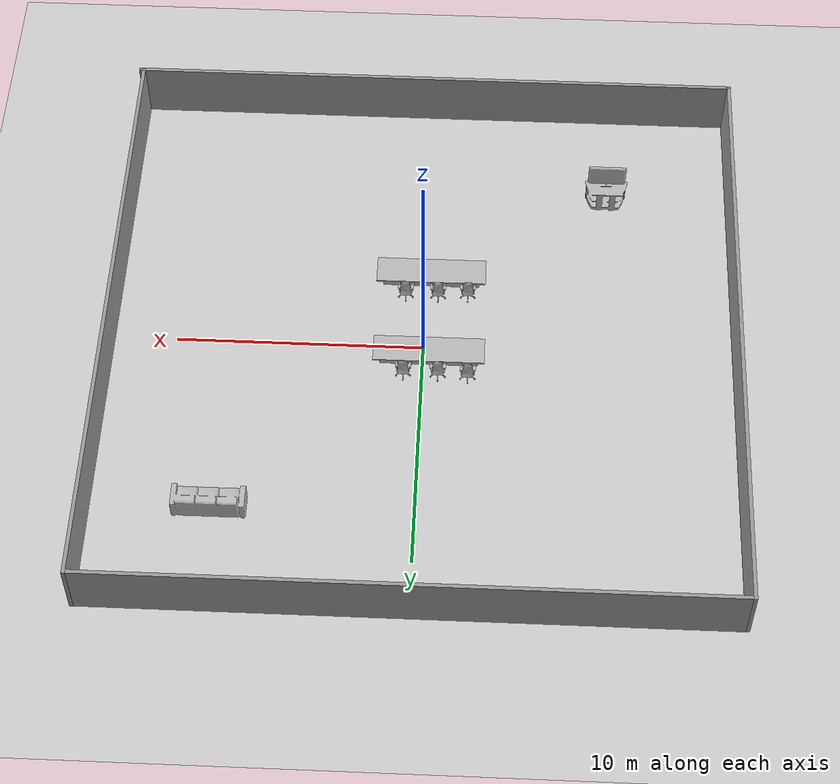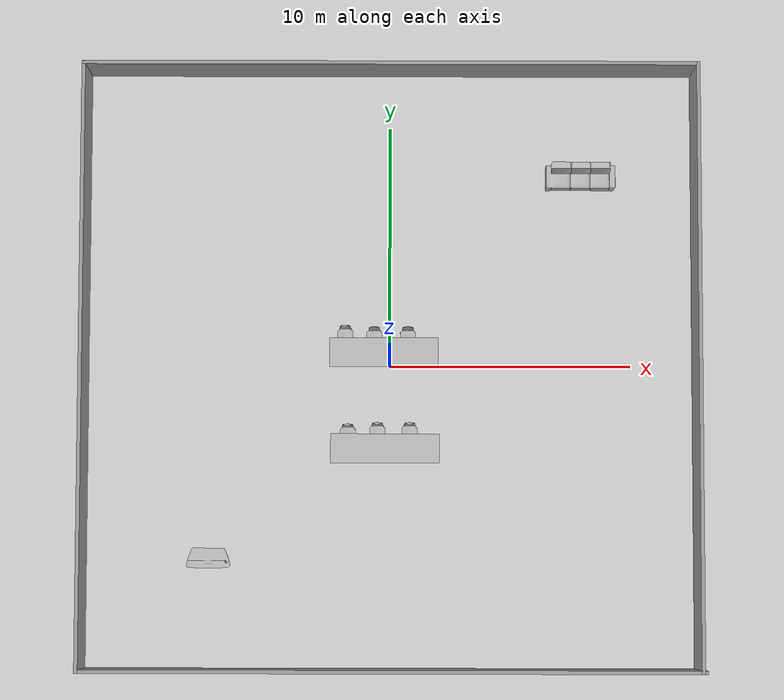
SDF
<sdf version="1.7">
 <world name="default">
  <light name="sun" type="directional">
   <pose>0 0 10 0 -0 0</pose>
   <diffuse>0.8 0.8 0.8 1</diffuse>
   <specular>0.2 0.2 0.2 1</specular>
   <attenuation>
    <range>1000</range>
    <constant>0.9</constant>
    <linear>0.01</linear>
    <quadratic>0.001</quadratic>
   </attenuation>
   <direction>-0.5 0.1 -0.9</direction>
   <spot><inner_angle>0</inner_angle><outer_angle>0</outer_angle><falloff>0</falloff></spot>
  </light>
  <model name="ground_plane">
   <static>1</static>
   <link name="link">
    <collision name="collision">
     <geometry><plane><normal>0 0 1</normal><size>100 100</size></plane></geometry>
     <surface>
      <contact><collide_bitmask>65535</collide_bitmask></contact>
      <friction><ode><mu>100</mu><mu2>50</mu2></ode></friction>
     </surface>
    </collision>
    <visual name="visual">
     <cast_shadows>0</cast_shadows>
     <geometry><plane><normal>0 0 1</normal><size>100 100</size></plane></geometry>
     <material>
      <script><uri>file://media/materials/scripts/gazebo.material</uri><name>Gazebo/Grey</name></script>
     </material>
    </visual>
   </link>
  </model>
  <gravity>0 0 -9.8</gravity>
  <magnetic_field>6e-06 2.3e-05 -4.2e-05</magnetic_field>
  <atmosphere type="adiabatic"/>
  <physics type="ode">
   <max_step_size>0.001</max_step_size>
   <real_time_factor>1</real_time_factor>
   <real_time_update_rate>1000</real_time_update_rate>
  </physics>
  <scene><ambient>0.4 0.4 0.4 1</ambient><background>0.7 0.7 0.7 1</background><shadows>1</shadows></scene>
  <spherical_coordinates>
   <surface_model>EARTH_WGS84</surface_model>
   <latitude_deg>0</latitude_deg>
   <longitude_deg>0</longitude_deg>
   <elevation>0</elevation>
   <heading_deg>0</heading_deg>
  </spherical_coordinates>
  <model name="office">
   <pose>0.076542 -0.096919 0 0 -0 0</pose>
   <link name="Wall_0">
    <collision name="Wall_0_Collision">
     <geometry><box><size>25 0.15 2.5</size></box></geometry>
     <pose>0 0 1.25 0 -0 0</pose>
    </collision>
    <visual name="Wall_0_Visual">
     <pose>0 0 1.25 0 -0 0</pose>
     <geometry><box><size>25 0.15 2.5</size></box></geometry>
     <material>
      <script><uri>file://media/materials/scripts/gazebo.material</uri><name>Gazebo/Grey</name></script>
      <ambient>1 1 1 1</ambient>
     </material>
     <meta><layer>0</layer></meta>
    </visual>
    <pose>-12.675 -0.001862 0 0 -0 -1.57079</pose>
   </link>
   <link name="Wall_2">
    <collision name="Wall_2_Collision">
     <geometry><box><size>25.5 0.15 2.5</size></box></geometry>
     <pose>0 0 1.25 0 -0 0</pose>
    </collision>
    <visual name="Wall_2_Visual">
     <pose>0 0 1.25 0 -0 0</pose>
     <geometry><box><size>25.5 0.15 2.5</size></box></geometry>
     <material>
      <script><uri>file://media/materials/scripts/gazebo.material</uri><name>Gazebo/Grey</name></script>
      <ambient>1 1 1 1</ambient>
     </material>
     <meta><layer>0</layer></meta>
    </visual>
    <pose>0.000117 -12.4267 0 0 -0 0</pose>
   </link>
   <link name="Wall_4">
    <collision name="Wall_4_Collision">
     <geometry><box><size>25.25 0.15 2.5</size></box></geometry>
     <pose>0 0 1.25 0 -0 0</pose>
    </collision>
    <visual name="Wall_4_Visual">
     <pose>0 0 1.25 0 -0 0</pose>
     <geometry><box><size>25.25 0.15 2.5</size></box></geometry>
     <material>
      <script><uri>file://media/materials/scripts/gazebo.material</uri><name>Gazebo/Grey</name></script>
      <ambient>1 1 1 1</ambient>
     </material>
     <meta><layer>0</layer></meta>
    </visual>
    <pose>-0.125116 12.423 0 0 -0 0</pose>
   </link>
   <link name="Wall_6">
    <collision name="Wall_6_Collision">
     <geometry><box><size>25 0.15 2.5</size></box></geometry>
     <pose>0 0 1.25 0 -0 0</pose>
    </collision>
    <visual name="Wall_6_Visual">
     <pose>0 0 1.25 0 -0 0</pose>
     <geometry><box><size>25 0.15 2.5</size></box></geometry>
     <material>
      <script><uri>file://media/materials/scripts/gazebo.material</uri><name>Gazebo/Grey</name></script>
      <ambient>1 1 1 1</ambient>
     </material>
     <meta><layer>0</layer></meta>
    </visual>
    <pose>12.5541 0.00186 0 0 -0 -1.5708</pose>
   </link>
   <link name="Wall_7">
    <collision name="Wall_7_Collision">
     <geometry><box><size>0.15 0.15 2.5</size></box></geometry>
     <pose>0 0 1.25 0 -0 0</pose>
    </collision>
    <visual name="Wall_7_Visual">
     <pose>0 0 1.25 0 -0 0</pose>
     <geometry><box><size>0.15 0.15 2.5</size></box></geometry>
     <material>
      <script><uri>file://media/materials/scripts/gazebo.material</uri><name>Gazebo/Grey</name></script>
      <ambient>1 1 1 1</ambient>
     </material>
     <meta><layer>0</layer></meta>
    </visual>
    <pose>12.5541 -12.4231 0 0 -0 0</pose>
   </link>
   <static>1</static>
  </model>
  <model name="conference_table_large">
   <static>1</static>
   <link name="link">
    <collision name="collision">
     <pose>-0.000328 -0.000776 0.367474 0 -0 0</pose>
     <geometry><box><size>4.52032 1.21763 0.742359</size></box></geometry>
    </collision>
    <visual name="visual">
     <geometry>
      <mesh>
       <uri>model://conference_table_large/meshes/conference_table_large.obj</uri>
       <scale>0.01 0.01 0.01</scale>
      </mesh>
     </geometry>
    </visual>
   </link>
   <pose>-0.255534 0.552359 0 0 -0 0</pose>
  </model>
  <model name="conference_table_large_0">
   <static>1</static>
   <link name="link">
    <collision name="collision">
     <pose>-0.000328 -0.000776 0.367474 0 -0 0</pose>
     <geometry><box><size>4.52032 1.21763 0.742359</size></box></geometry>
    </collision>
    <visual name="visual">
     <geometry>
      <mesh>
       <uri>model://conference_table_large/meshes/conference_table_large.obj</uri>
       <scale>0.01 0.01 0.01</scale>
      </mesh>
     </geometry>
    </visual>
   </link>
   <pose>-0.202752 -3.42729 0 0 -0 0</pose>
  </model>
  <model name="desk_chair">
   <static>1</static>
   <link name="link">
    <collision name="collision">
     <pose>0.001581 0.000308 0.612847 0 -0 0</pose>
     <geometry><cylinder><radius>0.33</radius><length>1.23</length></cylinder></geometry>
    </collision>
    <visual name="visual">
     <geometry>
      <mesh><uri>model://desk_chair/meshes/desk_chair.obj</uri><scale>0.01 0.01 0.01</scale></mesh>
     </geometry>
    </visual>
   </link>
   <pose>-1.85031 1.36259 0 0 -0 0</pose>
  </model>
  <model name="desk_chair_0">
   <static>1</static>
   <link name="link">
    <collision name="collision">
     <pose>0.001581 0.000308 0.612847 0 -0 0</pose>
     <geometry><cylinder><radius>0.33</radius><length>1.23</length></cylinder></geometry>
    </collision>
    <visual name="visual">
     <geometry>
      <mesh><uri>model://desk_chair/meshes/desk_chair.obj</uri><scale>0.01 0.01 0.01</scale></mesh>
     </geometry>
    </visual>
   </link>
   <pose>-0.650606 1.30778 0 0 -0 0</pose>
  </model>
  <model name="desk_chair_1">
   <static>1</static>
   <link name="link">
    <collision name="collision">
     <pose>0.001581 0.000308 0.612847 0 -0 0</pose>
     <geometry><cylinder><radius>0.33</radius><length>1.23</length></cylinder></geometry>
    </collision>
    <visual name="visual">
     <geometry>
      <mesh><uri>model://desk_chair/meshes/desk_chair.obj</uri><scale>0.01 0.01 0.01</scale></mesh>
     </geometry>
    </visual>
   </link>
   <pose>0.743598 1.31014 0 0 -0 0</pose>
  </model>
  <model name="desk_chair_2">
   <static>1</static>
   <link name="link">
    <collision name="collision">
     <pose>0.001581 0.000308 0.612847 0 -0 0</pose>
     <geometry><cylinder><radius>0.33</radius><length>1.23</length></cylinder></geometry>
    </collision>
    <visual name="visual">
     <geometry>
      <mesh><uri>model://desk_chair/meshes/desk_chair.obj</uri><scale>0.01 0.01 0.01</scale></mesh>
     </geometry>
    </visual>
   </link>
   <pose>-1.7328 -2.70865 0 0 -0 0</pose>
  </model>
  <model name="desk_chair_3">
   <static>1</static>
   <link name="link">
    <collision name="collision">
     <pose>0.001581 0.000308 0.612847 0 -0 0</pose>
     <geometry><cylinder><radius>0.33</radius><length>1.23</length></cylinder></geometry>
    </collision>
    <visual name="visual">
     <geometry>
      <mesh><uri>model://desk_chair/meshes/desk_chair.obj</uri><scale>0.01 0.01 0.01</scale></mesh>
     </geometry>
    </visual>
   </link>
   <pose>-0.512526 -2.65163 0 0 -0 0</pose>
  </model>
  <model name="desk_chair_4">
   <static>1</static>
   <link name="link">
    <collision name="collision">
     <pose>0.001581 0.000308 0.612847 0 -0 0</pose>
     <geometry><cylinder><radius>0.33</radius><length>1.23</length></cylinder></geometry>
    </collision>
    <visual name="visual">
     <geometry>
      <mesh><uri>model://desk_chair/meshes/desk_chair.obj</uri><scale>0.01 0.01 0.01</scale></mesh>
     </geometry>
    </visual>
   </link>
   <pose>0.818591 -2.64981 0 0 -0 0</pose>
  </model>
  <model name="tv_stand">
   <static>1</static>
   <link name="link">
    <collision name="collision">
     <pose>0.00123 -0.018095 1.05314 0 -0 0</pose>
     <geometry><box><size>1.80204 0.803547 2.11292</size></box></geometry>
    </collision>
    <visual name="visual">
     <geometry><mesh><uri>model://tv_stand/meshes/tv_stand.dae</uri><scale>1.4 1.4 1.4</scale></mesh></geometry>
    </visual>
   </link>
   <pose>-7.41996 -7.92395 0 0 -0 0</pose>
  </model>
  <model name="office_couch">
   <static>1</static>
   <link name="link">
    <collision name="collision">
     <pose>0.000893 0.384169 0.704321 0 -0 0</pose>
     <geometry><box><size>2.91435 0.976328 1.41768</size></box></geometry>
    </collision>
    <visual name="visual">
     <geometry>
      <mesh><uri>model://office_couch/meshes/office_couch.dae</uri><scale>1.4 1.4 1.4</scale></mesh>
     </geometry>
    </visual>
   </link>
   <pose>7.90746 7.50834 0 0 -0 0</pose>
  </model>
 </world>
</sdf>
